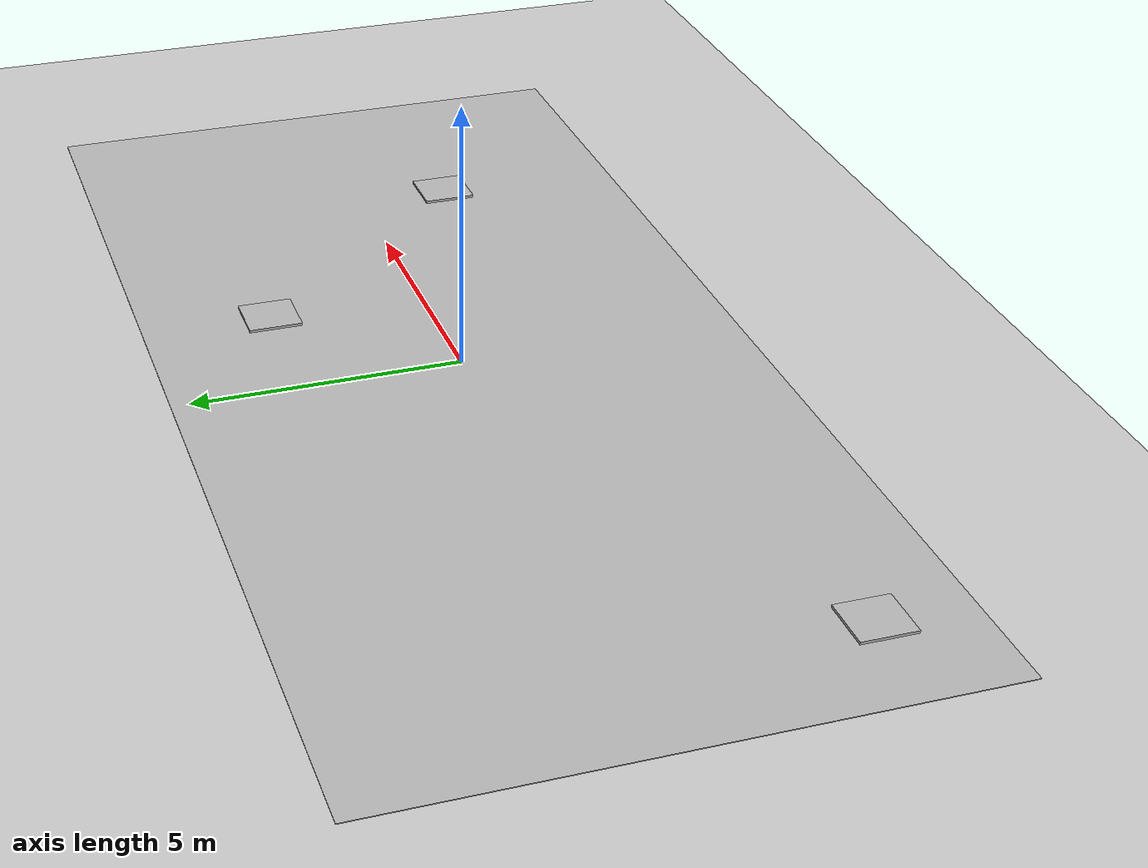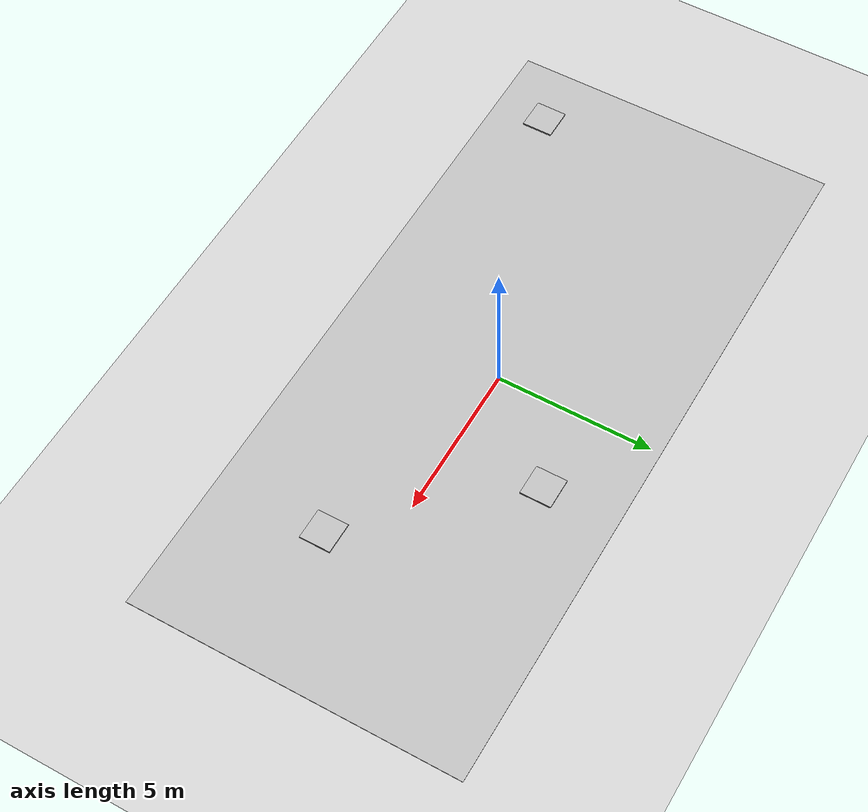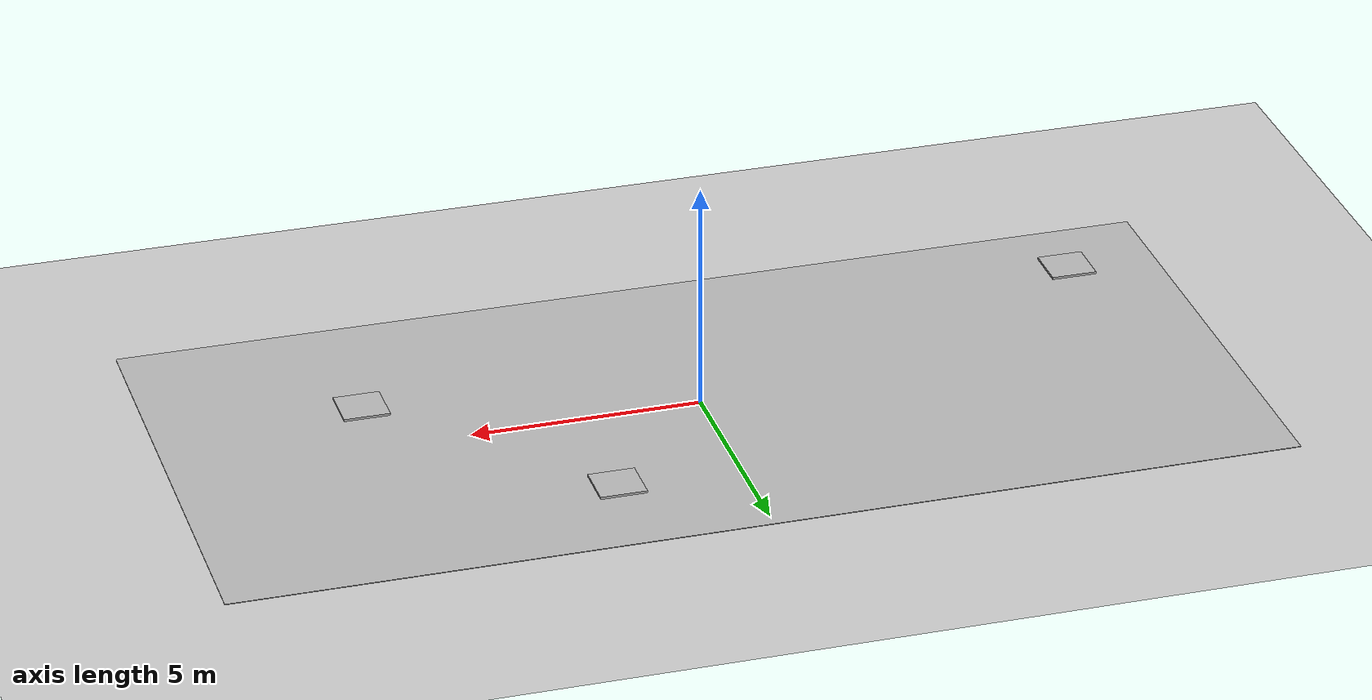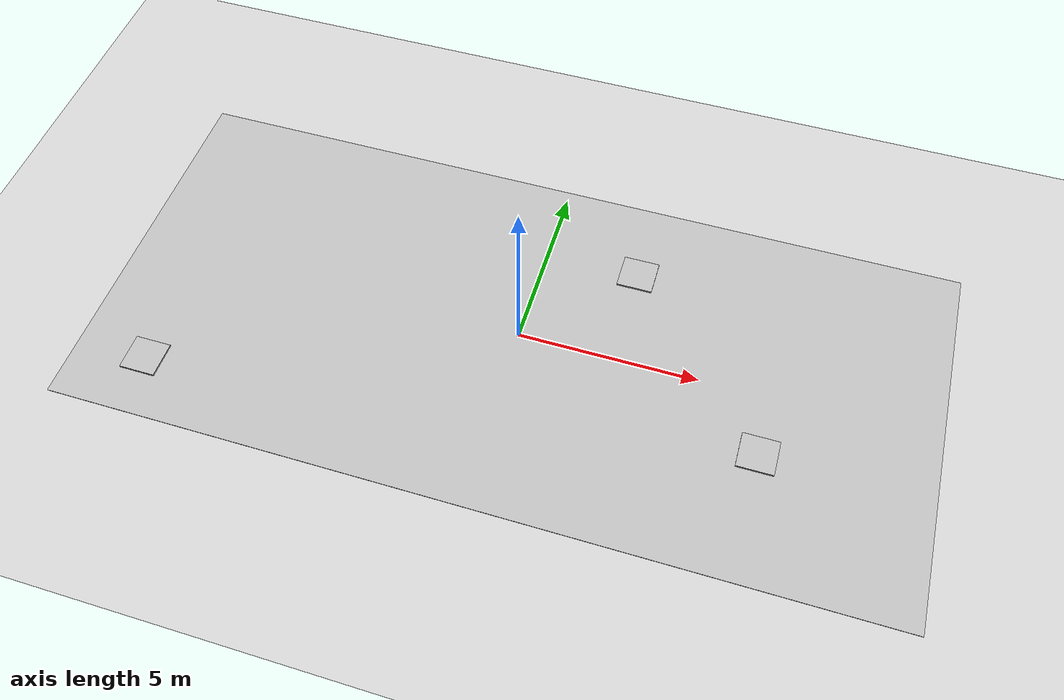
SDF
<sdf version="1.6">
 <world name="default">
  <light name="sun" type="directional">
   <pose>0 0 10 0 -0 0</pose>
   <diffuse>0.8 0.8 0.8 1</diffuse>
   <specular>0.2 0.2 0.2 1</specular>
   <attenuation>
    <range>1000</range>
    <constant>0.9</constant>
    <linear>0.01</linear>
    <quadratic>0.001</quadratic>
   </attenuation>
   <direction>-0.5 0.1 -0.9</direction>
  </light>
  <model name="ground_plane">
   <static>1</static>
   <link name="link">
    <collision name="collision">
     <geometry><plane><normal>0 0 1</normal><size>100 100</size></plane></geometry>
     <surface><friction><ode><mu>100</mu><mu2>50</mu2></ode></friction></surface>
    </collision>
    <visual name="visual">
     <cast_shadows>0</cast_shadows>
     <geometry><plane><normal>0 0 1</normal><size>100 100</size></plane></geometry>
     <material>
      <script><uri>file://media/materials/scripts/gazebo.material</uri><name>Gazebo/Grey</name></script>
     </material>
    </visual>
   </link>
  </model>
  <physics name="default_physics" default="0" type="ode">
   <ode>
    <solver>
     <type>quick</type>
     <iters>10</iters>
     <sor>1.3</sor>
     <use_dynamic_moi_rescaling>0</use_dynamic_moi_rescaling>
    </solver>
    <constraints>
     <cfm>0</cfm>
     <erp>0.2</erp>
     <contact_max_correcting_vel>100</contact_max_correcting_vel>
     <contact_surface_layer>0.001</contact_surface_layer>
    </constraints>
   </ode>
   <max_step_size>0.002</max_step_size>
   <real_time_factor>1</real_time_factor>
   <real_time_update_rate>500</real_time_update_rate>
  </physics>
  <gravity>0 0 -9.8066</gravity>
  <magnetic_field>6e-06 2.3e-05 -4.2e-05</magnetic_field>
  <atmosphere type="adiabatic"/>
  <scene><ambient>0.4 0.4 0.4 1</ambient><background>0.7 0.7 0.7 1</background><shadows>1</shadows></scene>
  <spherical_coordinates>
   <surface_model>EARTH_WGS84</surface_model>
   <latitude_deg>0</latitude_deg>
   <longitude_deg>0</longitude_deg>
   <elevation>0</elevation>
   <heading_deg>0</heading_deg>
  </spherical_coordinates>
  <model name="Carpet">
   <pose>0.001646 0.008063 0.008533 0 -0 0</pose>
   <static>1</static>
   <link name="link">
    <inertial>
     <mass>400</mass>
     <inertia><ixx>100</ixx><ixy>0</ixy><ixz>0</ixz><iyy>100</iyy><iyz>0</iyz><izz>100</izz></inertia>
    </inertial>
    <collision name="collision">
     <geometry><box><size>22.86 10.67 0.05</size></box></geometry>
     <surface><contact><ode><max_vel>0</max_vel><min_depth>0.001</min_depth></ode></contact></surface>
    </collision>
    <visual name="visual"><geometry><mesh><uri>model://Carpet/meshes/carpet.dae</uri></mesh></geometry></visual>
   </link>
  </model>
  <model name="Home_Target">
   <pose>-9.42306 -3.62814 0.058032 2e-06 -0.000998 -0.001974</pose>
   <static>0</static>
   <link name="link">
    <inertial>
     <mass>40</mass>
     <inertia><ixx>1</ixx><ixy>0</ixy><ixz>0</ixz><iyy>1</iyy><iyz>0</iyz><izz>1</izz></inertia>
    </inertial>
    <collision name="collision">
     <geometry><box><size>1 1 0.05</size></box></geometry>
     <surface><contact><ode><max_vel>0.1</max_vel><min_depth>0.001</min_depth></ode></contact></surface>
    </collision>
    <visual name="visual">
     <geometry><mesh><uri>model://HomeTarget/meshes/Home_Target.dae</uri></mesh></geometry>
    </visual>
   </link>
  </model>
  <model name="Red Circular Target">
   <pose>2.64325 2.92643 0.057962 2.9e-05 -0.000513 -9e-06</pose>
   <static>0</static>
   <link name="link">
    <inertial>
     <mass>40</mass>
     <inertia><ixx>1</ixx><ixy>0</ixy><ixz>0</ixz><iyy>1</iyy><iyz>0</iyz><izz>1</izz></inertia>
    </inertial>
    <collision name="collision">
     <geometry><box><size>1 1 0.05</size></box></geometry>
     <surface><contact><ode><max_vel>0.1</max_vel><min_depth>0.001</min_depth></ode></contact></surface>
    </collision>
    <visual name="visual">
     <geometry><mesh><uri>model://Circular Target/meshes/Circ_Target.dae</uri></mesh></geometry>
    </visual>
   </link>
  </model>
  <model name="Black Square Target">
   <pose>6.9127 -1.75226 0.05796 2.6e-05 -0.000436 -8e-06</pose>
   <static>0</static>
   <link name="link">
    <inertial>
     <mass>40</mass>
     <inertia><ixx>1</ixx><ixy>0</ixy><ixz>0</ixz><iyy>1</iyy><iyz>0</iyz><izz>1</izz></inertia>
    </inertial>
    <collision name="collision">
     <geometry><box><size>1 1 0.05</size></box></geometry>
     <surface><contact><ode><max_vel>0.1</max_vel><min_depth>0.001</min_depth></ode></contact></surface>
    </collision>
    <visual name="visual"><geometry><mesh><uri>model://Square/meshes/Square.dae</uri></mesh></geometry></visual>
   </link>
  </model>
 </world>
</sdf>
